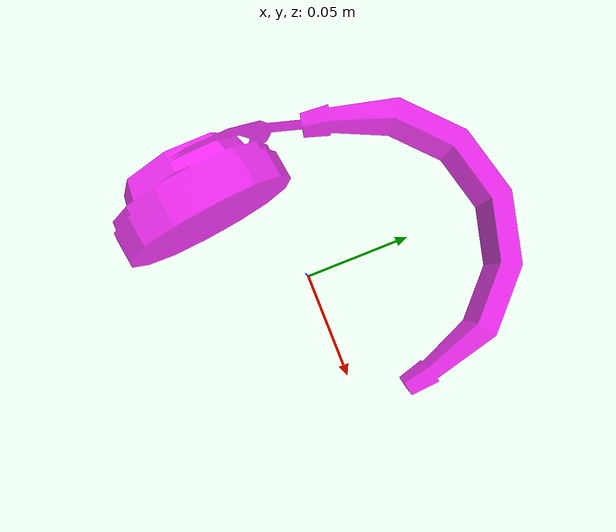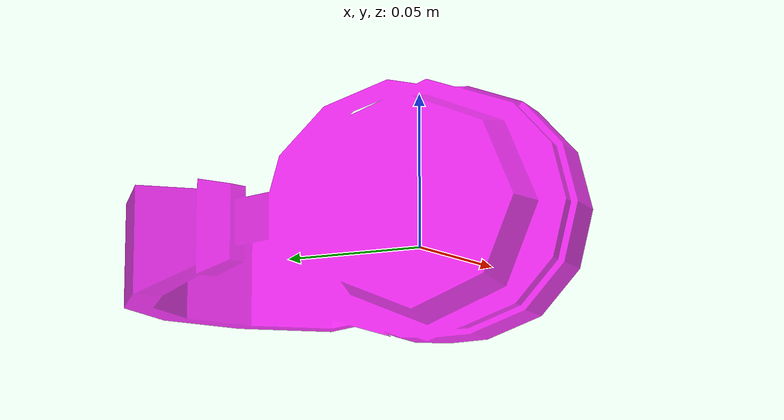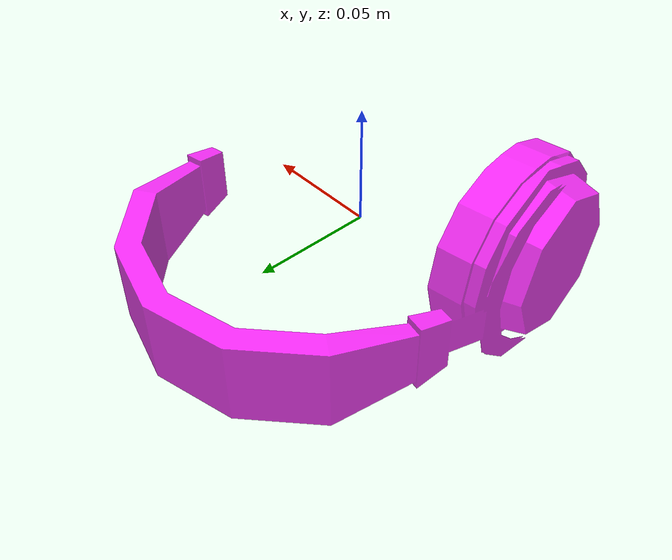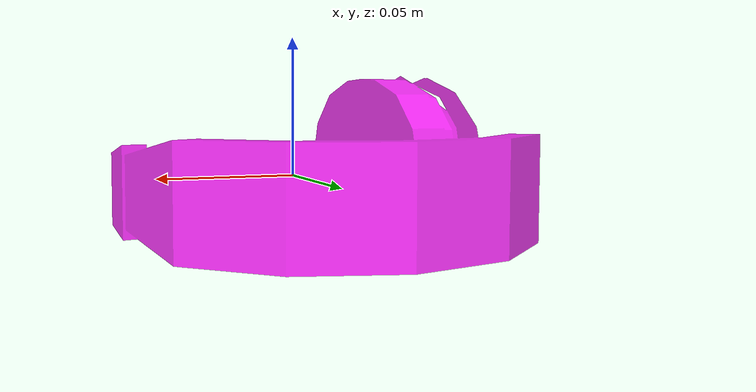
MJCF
<mujoco model="bottom_watertight_tiny">
  <default>
    <default group="2" type="mesh" contype="0" conaffinity="0">
      <geom group="2" type="mesh" contype="0" conaffinity="0"/>
    </default>
    <default group="3" type="mesh">
      <geom group="3" type="mesh"/>
    </default>
  </default>
  <asset>
    <mesh file="bottom_watertight_tiny.obj"/>
    <mesh file="bottom_watertight_tiny_collision_0.obj"/>
    <mesh file="bottom_watertight_tiny_collision_1.obj"/>
    <mesh file="bottom_watertight_tiny_collision_2.obj"/>
    <mesh file="bottom_watertight_tiny_collision_3.obj"/>
    <mesh file="bottom_watertight_tiny_collision_4.obj"/>
    <mesh file="bottom_watertight_tiny_collision_5.obj"/>
    <mesh file="bottom_watertight_tiny_collision_6.obj"/>
    <mesh file="bottom_watertight_tiny_collision_7.obj"/>
    <mesh file="bottom_watertight_tiny_collision_8.obj"/>
    <mesh file="bottom_watertight_tiny_collision_9.obj"/>
    <mesh file="bottom_watertight_tiny_collision_10.obj"/>
  </asset>
  <worldbody>
    <body name="bottom_watertight_tiny">
      <freejoint/>
      <geom mesh="bottom_watertight_tiny" group="2" type="mesh" rgba="1 0 1 0.8" contype="0" conaffinity="0"/>
      <geom mesh="bottom_watertight_tiny_collision_0" rgba="0.7702886763543769 0.17026460255572395 0.5967077943512583 1" group="3" type="mesh"/>
      <geom mesh="bottom_watertight_tiny_collision_1" rgba="0.21713630587438382 0.49183420138339884 0.844991040781907 1" group="3" type="mesh"/>
      <geom mesh="bottom_watertight_tiny_collision_2" rgba="0.7478847466445286 0.452731929948476 0.07769997329807055 1" group="3" type="mesh"/>
      <geom mesh="bottom_watertight_tiny_collision_3" rgba="0.4716981267502265 0.5138116425199856 0.47462361396637565 1" group="3" type="mesh"/>
      <geom mesh="bottom_watertight_tiny_collision_4" rgba="0.32717606193078586 0.8069211458108948 0.24882245842840478 1" group="3" type="mesh"/>
      <geom mesh="bottom_watertight_tiny_collision_5" rgba="0.27802803110994767 0.10606422481325495 0.9912991128622208 1" group="3" type="mesh"/>
      <geom mesh="bottom_watertight_tiny_collision_6" rgba="0.9480548779670334 0.7536054766045438 0.7479745516209404 1" group="3" type="mesh"/>
      <geom mesh="bottom_watertight_tiny_collision_7" rgba="0.9477393544196723 0.8711548000757964 0.004717158057369164 1" group="3" type="mesh"/>
      <geom mesh="bottom_watertight_tiny_collision_8" rgba="0.8946360368792812 0.36468031010369373 0.506211236012623 1" group="3" type="mesh"/>
      <geom mesh="bottom_watertight_tiny_collision_9" rgba="0.8538785590635328 0.9554241194825084 0.8827730627485352 1" group="3" type="mesh"/>
      <geom mesh="bottom_watertight_tiny_collision_10" rgba="0.8417175814504976 0.6508535175583888 0.23457127322349158 1" group="3" type="mesh"/>
    </body>
  </worldbody>
</mujoco>
